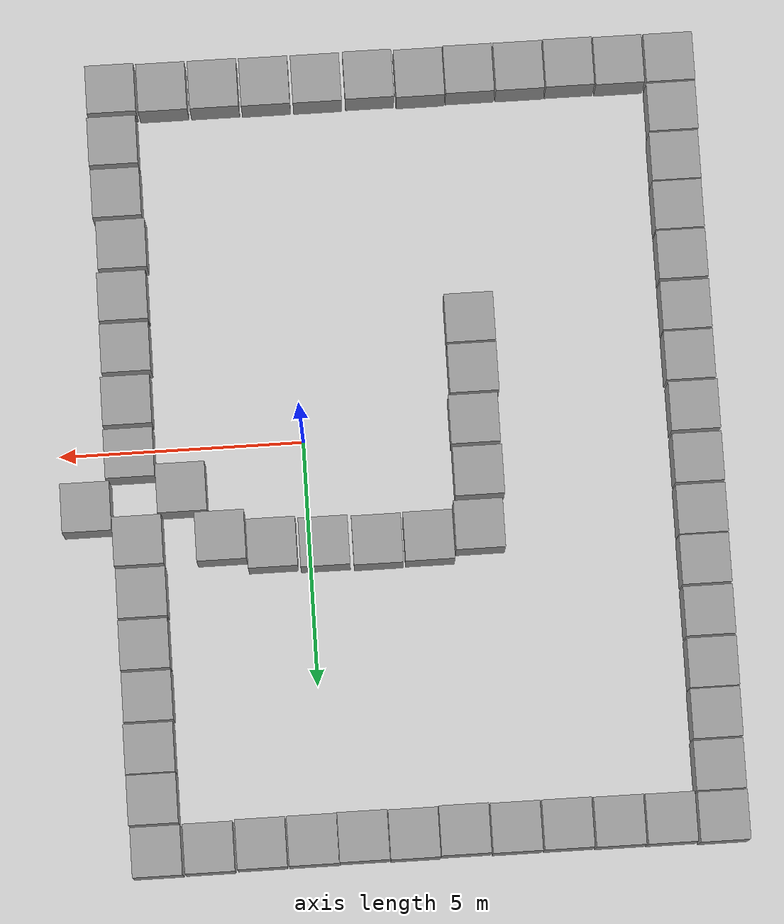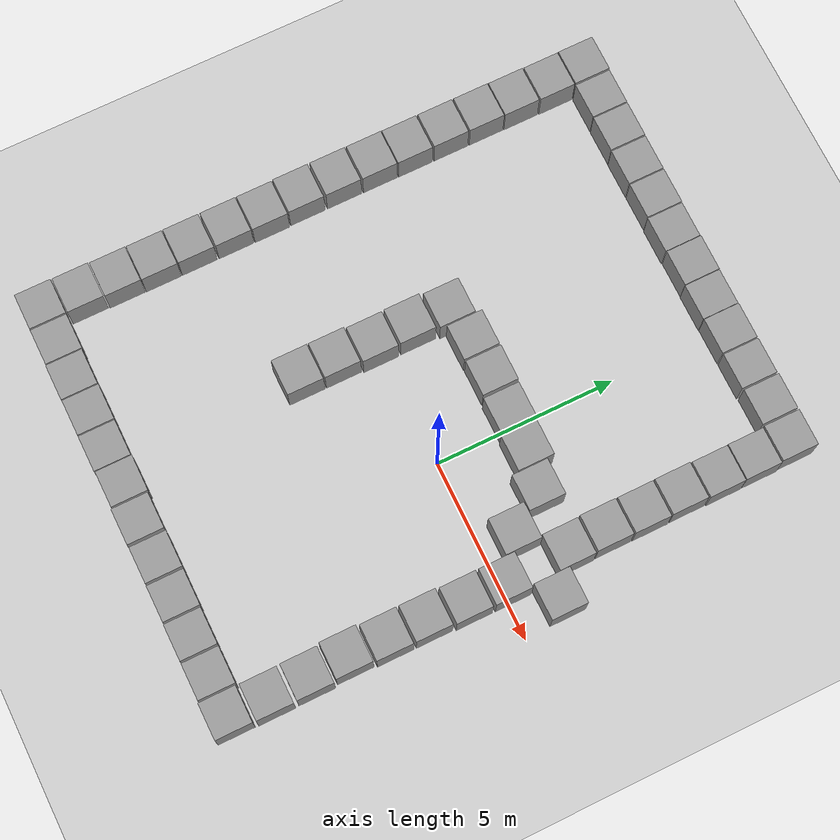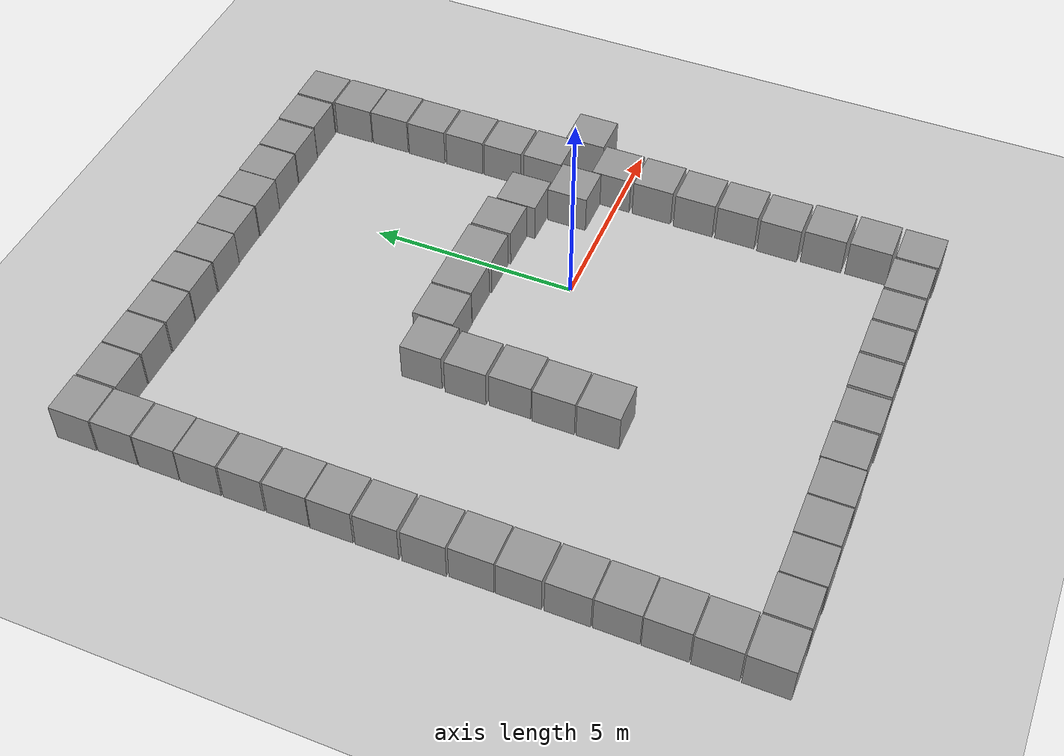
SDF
<sdf version="1.6">
 <world name="default">
  <light name="sun" type="directional">
   <pose>0 0 10 0 -0 0</pose>
   <diffuse>0.8 0.8 0.8 1</diffuse>
   <specular>0.1 0.1 0.1 1</specular>
   <attenuation>
    <range>1000</range>
    <constant>0.9</constant>
    <linear>0.01</linear>
    <quadratic>0.001</quadratic>
   </attenuation>
   <direction>-0.5 0.5 -1</direction>
  </light>
  <model name="ground_plane">
   <static>1</static>
   <link name="link">
    <collision name="collision">
     <geometry><plane><normal>0 0 1</normal><size>100 100</size></plane></geometry>
     <surface><friction><ode><mu>100</mu><mu2>50</mu2></ode></friction></surface>
    </collision>
    <visual name="visual">
     <cast_shadows>0</cast_shadows>
     <geometry><plane><normal>0 0 1</normal><size>100 100</size></plane></geometry>
     <material>
      <script><uri>file://media/materials/scripts/gazebo.material</uri><name>Gazebo/Grey</name></script>
     </material>
    </visual>
   </link>
  </model>
  <gravity>0 0 -9.8</gravity>
  <magnetic_field>6e-06 2.3e-05 -4.2e-05</magnetic_field>
  <atmosphere type="adiabatic"/>
  <physics name="default_physics" default="0" type="ode">
   <max_step_size>0.001</max_step_size>
   <real_time_factor>1</real_time_factor>
   <real_time_update_rate>1000</real_time_update_rate>
  </physics>
  <scene><ambient>0.4 0.4 0.4 1</ambient><background>0.7 0.7 0.7 1</background><shadows>1</shadows></scene>
  <spherical_coordinates>
   <surface_model>EARTH_WGS84</surface_model>
   <latitude_deg>0</latitude_deg>
   <longitude_deg>0</longitude_deg>
   <elevation>0</elevation>
   <heading_deg>0</heading_deg>
  </spherical_coordinates>
  <model name="unit_box_0">
   <pose>3.53321 0.132498 0.499995 0 1e-05 0</pose>
   <link name="link">
    <inertial>
     <mass>1</mass>
     <inertia>
      <ixx>0.166667</ixx>
      <ixy>0</ixy>
      <ixz>0</ixz>
      <iyy>0.166667</iyy>
      <iyz>0</iyz>
      <izz>0.166667</izz>
     </inertia>
    </inertial>
    <collision name="collision"><geometry><box><size>1 1 1</size></box></geometry></collision>
    <visual name="visual">
     <geometry><box><size>1 1 1</size></box></geometry>
     <material>
      <script><name>Gazebo/Grey</name><uri>file://media/materials/scripts/gazebo.material</uri></script>
     </material>
    </visual>
   </link>
  </model>
  <model name="unit_box_1">
   <pose>3.52933 -0.950333 0.499995 -1e-05 0 0</pose>
   <link name="link">
    <inertial>
     <mass>1</mass>
     <inertia>
      <ixx>0.166667</ixx>
      <ixy>0</ixy>
      <ixz>0</ixz>
      <iyy>0.166667</iyy>
      <iyz>0</iyz>
      <izz>0.166667</izz>
     </inertia>
    </inertial>
    <collision name="collision"><geometry><box><size>1 1 1</size></box></geometry></collision>
    <visual name="visual">
     <geometry><box><size>1 1 1</size></box></geometry>
     <material>
      <script><name>Gazebo/Grey</name><uri>file://media/materials/scripts/gazebo.material</uri></script>
     </material>
    </visual>
   </link>
  </model>
  <model name="unit_box_2">
   <pose>3.49553 -2.03354 0.499995 0 1e-05 0</pose>
   <link name="link">
    <inertial>
     <mass>1</mass>
     <inertia>
      <ixx>0.166667</ixx>
      <ixy>0</ixy>
      <ixz>0</ixz>
      <iyy>0.166667</iyy>
      <iyz>0</iyz>
      <izz>0.166667</izz>
     </inertia>
    </inertial>
    <collision name="collision"><geometry><box><size>1 1 1</size></box></geometry></collision>
    <visual name="visual">
     <geometry><box><size>1 1 1</size></box></geometry>
     <material>
      <script><name>Gazebo/Grey</name><uri>file://media/materials/scripts/gazebo.material</uri></script>
     </material>
    </visual>
   </link>
  </model>
  <model name="unit_box_3">
   <pose>3.49325 -3.10216 0.499995 -1e-05 0 0</pose>
   <link name="link">
    <inertial>
     <mass>1</mass>
     <inertia>
      <ixx>0.166667</ixx>
      <ixy>0</ixy>
      <ixz>0</ixz>
      <iyy>0.166667</iyy>
      <iyz>0</iyz>
      <izz>0.166667</izz>
     </inertia>
    </inertial>
    <collision name="collision"><geometry><box><size>1 1 1</size></box></geometry></collision>
    <visual name="visual">
     <geometry><box><size>1 1 1</size></box></geometry>
     <material>
      <script><name>Gazebo/Grey</name><uri>file://media/materials/scripts/gazebo.material</uri></script>
     </material>
    </visual>
   </link>
  </model>
  <model name="unit_box_4">
   <pose>3.45611 -4.17748 0.499995 0 1e-05 0</pose>
   <link name="link">
    <inertial>
     <mass>1</mass>
     <inertia>
      <ixx>0.166667</ixx>
      <ixy>0</ixy>
      <ixz>0</ixz>
      <iyy>0.166667</iyy>
      <iyz>0</iyz>
      <izz>0.166667</izz>
     </inertia>
    </inertial>
    <collision name="collision"><geometry><box><size>1 1 1</size></box></geometry></collision>
    <visual name="visual">
     <geometry><box><size>1 1 1</size></box></geometry>
     <material>
      <script><name>Gazebo/Grey</name><uri>file://media/materials/scripts/gazebo.material</uri></script>
     </material>
    </visual>
   </link>
  </model>
  <model name="unit_box_5">
   <pose>3.51108 -5.25224 0.499995 -1e-05 0 0</pose>
   <link name="link">
    <inertial>
     <mass>1</mass>
     <inertia>
      <ixx>0.166667</ixx>
      <ixy>0</ixy>
      <ixz>0</ixz>
      <iyy>0.166667</iyy>
      <iyz>0</iyz>
      <izz>0.166667</izz>
     </inertia>
    </inertial>
    <collision name="collision"><geometry><box><size>1 1 1</size></box></geometry></collision>
    <visual name="visual">
     <geometry><box><size>1 1 1</size></box></geometry>
     <material>
      <script><name>Gazebo/Grey</name><uri>file://media/materials/scripts/gazebo.material</uri></script>
     </material>
    </visual>
   </link>
  </model>
  <model name="unit_box_6">
   <pose>3.52556 -6.34191 0.499995 0 1e-05 0</pose>
   <link name="link">
    <inertial>
     <mass>1</mass>
     <inertia>
      <ixx>0.166667</ixx>
      <ixy>0</ixy>
      <ixz>0</ixz>
      <iyy>0.166667</iyy>
      <iyz>0</iyz>
      <izz>0.166667</izz>
     </inertia>
    </inertial>
    <collision name="collision"><geometry><box><size>1 1 1</size></box></geometry></collision>
    <visual name="visual">
     <geometry><box><size>1 1 1</size></box></geometry>
     <material>
      <script><name>Gazebo/Grey</name><uri>file://media/materials/scripts/gazebo.material</uri></script>
     </material>
    </visual>
   </link>
  </model>
  <model name="unit_box_7">
   <pose>3.51186 -7.42945 0.499995 -1e-05 0 0</pose>
   <link name="link">
    <inertial>
     <mass>1</mass>
     <inertia>
      <ixx>0.166667</ixx>
      <ixy>0</ixy>
      <ixz>0</ixz>
      <iyy>0.166667</iyy>
      <iyz>0</iyz>
      <izz>0.166667</izz>
     </inertia>
    </inertial>
    <collision name="collision"><geometry><box><size>1 1 1</size></box></geometry></collision>
    <visual name="visual">
     <geometry><box><size>1 1 1</size></box></geometry>
     <material>
      <script><name>Gazebo/Grey</name><uri>file://media/materials/scripts/gazebo.material</uri></script>
     </material>
    </visual>
   </link>
  </model>
  <model name="unit_box_8">
   <pose>2.46239 -7.40285 0.499995 0 1e-05 0</pose>
   <link name="link">
    <inertial>
     <mass>1</mass>
     <inertia>
      <ixx>0.166667</ixx>
      <ixy>0</ixy>
      <ixz>0</ixz>
      <iyy>0.166667</iyy>
      <iyz>0</iyz>
      <izz>0.166667</izz>
     </inertia>
    </inertial>
    <collision name="collision"><geometry><box><size>1 1 1</size></box></geometry></collision>
    <visual name="visual">
     <geometry><box><size>1 1 1</size></box></geometry>
     <material>
      <script><name>Gazebo/Grey</name><uri>file://media/materials/scripts/gazebo.material</uri></script>
     </material>
    </visual>
   </link>
  </model>
  <model name="unit_box_9">
   <pose>1.40532 -7.40187 0.499995 -1e-05 0 0</pose>
   <link name="link">
    <inertial>
     <mass>1</mass>
     <inertia>
      <ixx>0.166667</ixx>
      <ixy>0</ixy>
      <ixz>0</ixz>
      <iyy>0.166667</iyy>
      <iyz>0</iyz>
      <izz>0.166667</izz>
     </inertia>
    </inertial>
    <collision name="collision"><geometry><box><size>1 1 1</size></box></geometry></collision>
    <visual name="visual">
     <geometry><box><size>1 1 1</size></box></geometry>
     <material>
      <script><name>Gazebo/Grey</name><uri>file://media/materials/scripts/gazebo.material</uri></script>
     </material>
    </visual>
   </link>
  </model>
  <model name="unit_box_10">
   <pose>0.3512 -7.39122 0.499995 0 1e-05 0</pose>
   <link name="link">
    <inertial>
     <mass>1</mass>
     <inertia>
      <ixx>0.166667</ixx>
      <ixy>0</ixy>
      <ixz>0</ixz>
      <iyy>0.166667</iyy>
      <iyz>0</iyz>
      <izz>0.166667</izz>
     </inertia>
    </inertial>
    <collision name="collision"><geometry><box><size>1 1 1</size></box></geometry></collision>
    <visual name="visual">
     <geometry><box><size>1 1 1</size></box></geometry>
     <material>
      <script><name>Gazebo/Grey</name><uri>file://media/materials/scripts/gazebo.material</uri></script>
     </material>
    </visual>
   </link>
  </model>
  <model name="unit_box_11">
   <pose>-0.711689 -7.38835 0.499995 -1e-05 0 0</pose>
   <link name="link">
    <inertial>
     <mass>1</mass>
     <inertia>
      <ixx>0.166667</ixx>
      <ixy>0</ixy>
      <ixz>0</ixz>
      <iyy>0.166667</iyy>
      <iyz>0</iyz>
      <izz>0.166667</izz>
     </inertia>
    </inertial>
    <collision name="collision"><geometry><box><size>1 1 1</size></box></geometry></collision>
    <visual name="visual">
     <geometry><box><size>1 1 1</size></box></geometry>
     <material>
      <script><name>Gazebo/Grey</name><uri>file://media/materials/scripts/gazebo.material</uri></script>
     </material>
    </visual>
   </link>
  </model>
  <model name="unit_box_12">
   <pose>-1.78816 -7.4009 0.499995 0 1e-05 0</pose>
   <link name="link">
    <inertial>
     <mass>1</mass>
     <inertia>
      <ixx>0.166667</ixx>
      <ixy>0</ixy>
      <ixz>0</ixz>
      <iyy>0.166667</iyy>
      <iyz>0</iyz>
      <izz>0.166667</izz>
     </inertia>
    </inertial>
    <collision name="collision"><geometry><box><size>1 1 1</size></box></geometry></collision>
    <visual name="visual">
     <geometry><box><size>1 1 1</size></box></geometry>
     <material>
      <script><name>Gazebo/Grey</name><uri>file://media/materials/scripts/gazebo.material</uri></script>
     </material>
    </visual>
   </link>
  </model>
  <model name="unit_box_13">
   <pose>-2.83385 -7.37394 0.499995 -1e-05 0 0</pose>
   <link name="link">
    <inertial>
     <mass>1</mass>
     <inertia>
      <ixx>0.166667</ixx>
      <ixy>0</ixy>
      <ixz>0</ixz>
      <iyy>0.166667</iyy>
      <iyz>0</iyz>
      <izz>0.166667</izz>
     </inertia>
    </inertial>
    <collision name="collision"><geometry><box><size>1 1 1</size></box></geometry></collision>
    <visual name="visual">
     <geometry><box><size>1 1 1</size></box></geometry>
     <material>
      <script><name>Gazebo/Grey</name><uri>file://media/materials/scripts/gazebo.material</uri></script>
     </material>
    </visual>
   </link>
  </model>
  <model name="unit_box_14">
   <pose>-3.85385 -7.3933 0.499995 0 1e-05 0</pose>
   <link name="link">
    <inertial>
     <mass>1</mass>
     <inertia>
      <ixx>0.166667</ixx>
      <ixy>0</ixy>
      <ixz>0</ixz>
      <iyy>0.166667</iyy>
      <iyz>0</iyz>
      <izz>0.166667</izz>
     </inertia>
    </inertial>
    <collision name="collision"><geometry><box><size>1 1 1</size></box></geometry></collision>
    <visual name="visual">
     <geometry><box><size>1 1 1</size></box></geometry>
     <material>
      <script><name>Gazebo/Grey</name><uri>file://media/materials/scripts/gazebo.material</uri></script>
     </material>
    </visual>
   </link>
  </model>
  <model name="unit_box_15">
   <pose>-4.88602 -7.39111 0.499995 -1e-05 0 0</pose>
   <link name="link">
    <inertial>
     <mass>1</mass>
     <inertia>
      <ixx>0.166667</ixx>
      <ixy>0</ixy>
      <ixz>0</ixz>
      <iyy>0.166667</iyy>
      <iyz>0</iyz>
      <izz>0.166667</izz>
     </inertia>
    </inertial>
    <collision name="collision"><geometry><box><size>1 1 1</size></box></geometry></collision>
    <visual name="visual">
     <geometry><box><size>1 1 1</size></box></geometry>
     <material>
      <script><name>Gazebo/Grey</name><uri>file://media/materials/scripts/gazebo.material</uri></script>
     </material>
    </visual>
   </link>
  </model>
  <model name="unit_box_16">
   <pose>-5.91315 -7.40034 0.499995 0 1e-05 0</pose>
   <link name="link">
    <inertial>
     <mass>1</mass>
     <inertia>
      <ixx>0.166667</ixx>
      <ixy>0</ixy>
      <ixz>0</ixz>
      <iyy>0.166667</iyy>
      <iyz>0</iyz>
      <izz>0.166667</izz>
     </inertia>
    </inertial>
    <collision name="collision"><geometry><box><size>1 1 1</size></box></geometry></collision>
    <visual name="visual">
     <geometry><box><size>1 1 1</size></box></geometry>
     <material>
      <script><name>Gazebo/Grey</name><uri>file://media/materials/scripts/gazebo.material</uri></script>
     </material>
    </visual>
   </link>
  </model>
  <model name="unit_box_17">
   <pose>-6.94066 -7.3849 0.499995 -1e-05 0 0</pose>
   <link name="link">
    <inertial>
     <mass>1</mass>
     <inertia>
      <ixx>0.166667</ixx>
      <ixy>0</ixy>
      <ixz>0</ixz>
      <iyy>0.166667</iyy>
      <iyz>0</iyz>
      <izz>0.166667</izz>
     </inertia>
    </inertial>
    <collision name="collision"><geometry><box><size>1 1 1</size></box></geometry></collision>
    <visual name="visual">
     <geometry><box><size>1 1 1</size></box></geometry>
     <material>
      <script><name>Gazebo/Grey</name><uri>file://media/materials/scripts/gazebo.material</uri></script>
     </material>
    </visual>
   </link>
  </model>
  <model name="unit_box_18">
   <pose>-7.9798 -7.38371 0.499995 0 1e-05 0</pose>
   <link name="link">
    <inertial>
     <mass>1</mass>
     <inertia>
      <ixx>0.166667</ixx>
      <ixy>0</ixy>
      <ixz>0</ixz>
      <iyy>0.166667</iyy>
      <iyz>0</iyz>
      <izz>0.166667</izz>
     </inertia>
    </inertial>
    <collision name="collision"><geometry><box><size>1 1 1</size></box></geometry></collision>
    <visual name="visual">
     <geometry><box><size>1 1 1</size></box></geometry>
     <material>
      <script><name>Gazebo/Grey</name><uri>file://media/materials/scripts/gazebo.material</uri></script>
     </material>
    </visual>
   </link>
  </model>
  <model name="unit_box_19">
   <pose>-7.96835 -6.34791 0.499995 -1e-05 0 0</pose>
   <link name="link">
    <inertial>
     <mass>1</mass>
     <inertia>
      <ixx>0.166667</ixx>
      <ixy>0</ixy>
      <ixz>0</ixz>
      <iyy>0.166667</iyy>
      <iyz>0</iyz>
      <izz>0.166667</izz>
     </inertia>
    </inertial>
    <collision name="collision"><geometry><box><size>1 1 1</size></box></geometry></collision>
    <visual name="visual">
     <geometry><box><size>1 1 1</size></box></geometry>
     <material>
      <script><name>Gazebo/Grey</name><uri>file://media/materials/scripts/gazebo.material</uri></script>
     </material>
    </visual>
   </link>
  </model>
  <model name="unit_box_20">
   <pose>-7.94883 -5.31525 0.499995 0 1e-05 0</pose>
   <link name="link">
    <inertial>
     <mass>1</mass>
     <inertia>
      <ixx>0.166667</ixx>
      <ixy>0</ixy>
      <ixz>0</ixz>
      <iyy>0.166667</iyy>
      <iyz>0</iyz>
      <izz>0.166667</izz>
     </inertia>
    </inertial>
    <collision name="collision"><geometry><box><size>1 1 1</size></box></geometry></collision>
    <visual name="visual">
     <geometry><box><size>1 1 1</size></box></geometry>
     <material>
      <script><name>Gazebo/Grey</name><uri>file://media/materials/scripts/gazebo.material</uri></script>
     </material>
    </visual>
   </link>
  </model>
  <model name="unit_box_21">
   <pose>-7.94175 -4.29108 0.499995 -1e-05 0 0</pose>
   <link name="link">
    <inertial>
     <mass>1</mass>
     <inertia>
      <ixx>0.166667</ixx>
      <ixy>0</ixy>
      <ixz>0</ixz>
      <iyy>0.166667</iyy>
      <iyz>0</iyz>
      <izz>0.166667</izz>
     </inertia>
    </inertial>
    <collision name="collision"><geometry><box><size>1 1 1</size></box></geometry></collision>
    <visual name="visual">
     <geometry><box><size>1 1 1</size></box></geometry>
     <material>
      <script><name>Gazebo/Grey</name><uri>file://media/materials/scripts/gazebo.material</uri></script>
     </material>
    </visual>
   </link>
  </model>
  <model name="unit_box_22">
   <pose>-7.945 -3.26174 0.499995 0 1e-05 0</pose>
   <link name="link">
    <inertial>
     <mass>1</mass>
     <inertia>
      <ixx>0.166667</ixx>
      <ixy>0</ixy>
      <ixz>0</ixz>
      <iyy>0.166667</iyy>
      <iyz>0</iyz>
      <izz>0.166667</izz>
     </inertia>
    </inertial>
    <collision name="collision"><geometry><box><size>1 1 1</size></box></geometry></collision>
    <visual name="visual">
     <geometry><box><size>1 1 1</size></box></geometry>
     <material>
      <script><name>Gazebo/Grey</name><uri>file://media/materials/scripts/gazebo.material</uri></script>
     </material>
    </visual>
   </link>
  </model>
  <model name="unit_box_23">
   <pose>-7.94462 -2.20686 0.499995 -1e-05 0 0</pose>
   <link name="link">
    <inertial>
     <mass>1</mass>
     <inertia>
      <ixx>0.166667</ixx>
      <ixy>0</ixy>
      <ixz>0</ixz>
      <iyy>0.166667</iyy>
      <iyz>0</iyz>
      <izz>0.166667</izz>
     </inertia>
    </inertial>
    <collision name="collision"><geometry><box><size>1 1 1</size></box></geometry></collision>
    <visual name="visual">
     <geometry><box><size>1 1 1</size></box></geometry>
     <material>
      <script><name>Gazebo/Grey</name><uri>file://media/materials/scripts/gazebo.material</uri></script>
     </material>
    </visual>
   </link>
  </model>
  <model name="unit_box_24">
   <pose>-7.94133 -1.17308 0.499995 0 1e-05 0</pose>
   <link name="link">
    <inertial>
     <mass>1</mass>
     <inertia>
      <ixx>0.166667</ixx>
      <ixy>0</ixy>
      <ixz>0</ixz>
      <iyy>0.166667</iyy>
      <iyz>0</iyz>
      <izz>0.166667</izz>
     </inertia>
    </inertial>
    <collision name="collision"><geometry><box><size>1 1 1</size></box></geometry></collision>
    <visual name="visual">
     <geometry><box><size>1 1 1</size></box></geometry>
     <material>
      <script><name>Gazebo/Grey</name><uri>file://media/materials/scripts/gazebo.material</uri></script>
     </material>
    </visual>
   </link>
  </model>
  <model name="unit_box_25">
   <pose>-7.96197 -0.132017 0.499995 -1e-05 0 0</pose>
   <link name="link">
    <inertial>
     <mass>1</mass>
     <inertia>
      <ixx>0.166667</ixx>
      <ixy>0</ixy>
      <ixz>0</ixz>
      <iyy>0.166667</iyy>
      <iyz>0</iyz>
      <izz>0.166667</izz>
     </inertia>
    </inertial>
    <collision name="collision"><geometry><box><size>1 1 1</size></box></geometry></collision>
    <visual name="visual">
     <geometry><box><size>1 1 1</size></box></geometry>
     <material>
      <script><name>Gazebo/Grey</name><uri>file://media/materials/scripts/gazebo.material</uri></script>
     </material>
    </visual>
   </link>
  </model>
  <model name="unit_box_26">
   <pose>-7.9635 0.93502 0.499995 0 1e-05 0</pose>
   <link name="link">
    <inertial>
     <mass>1</mass>
     <inertia>
      <ixx>0.166667</ixx>
      <ixy>0</ixy>
      <ixz>0</ixz>
      <iyy>0.166667</iyy>
      <iyz>0</iyz>
      <izz>0.166667</izz>
     </inertia>
    </inertial>
    <collision name="collision"><geometry><box><size>1 1 1</size></box></geometry></collision>
    <visual name="visual">
     <geometry><box><size>1 1 1</size></box></geometry>
     <material>
      <script><name>Gazebo/Grey</name><uri>file://media/materials/scripts/gazebo.material</uri></script>
     </material>
    </visual>
   </link>
  </model>
  <model name="unit_box_27">
   <pose>-7.95908 1.98405 0.499995 -1e-05 0 0</pose>
   <link name="link">
    <inertial>
     <mass>1</mass>
     <inertia>
      <ixx>0.166667</ixx>
      <ixy>0</ixy>
      <ixz>0</ixz>
      <iyy>0.166667</iyy>
      <iyz>0</iyz>
      <izz>0.166667</izz>
     </inertia>
    </inertial>
    <collision name="collision"><geometry><box><size>1 1 1</size></box></geometry></collision>
    <visual name="visual">
     <geometry><box><size>1 1 1</size></box></geometry>
     <material>
      <script><name>Gazebo/Grey</name><uri>file://media/materials/scripts/gazebo.material</uri></script>
     </material>
    </visual>
   </link>
  </model>
  <model name="unit_box_28">
   <pose>-7.95308 3.00855 0.499995 0 1e-05 0</pose>
   <link name="link">
    <inertial>
     <mass>1</mass>
     <inertia>
      <ixx>0.166667</ixx>
      <ixy>0</ixy>
      <ixz>0</ixz>
      <iyy>0.166667</iyy>
      <iyz>0</iyz>
      <izz>0.166667</izz>
     </inertia>
    </inertial>
    <collision name="collision"><geometry><box><size>1 1 1</size></box></geometry></collision>
    <visual name="visual">
     <geometry><box><size>1 1 1</size></box></geometry>
     <material>
      <script><name>Gazebo/Grey</name><uri>file://media/materials/scripts/gazebo.material</uri></script>
     </material>
    </visual>
   </link>
  </model>
  <model name="unit_box_29">
   <pose>-7.9525 4.05328 0.499995 -1e-05 0 0</pose>
   <link name="link">
    <inertial>
     <mass>1</mass>
     <inertia>
      <ixx>0.166667</ixx>
      <ixy>0</ixy>
      <ixz>0</ixz>
      <iyy>0.166667</iyy>
      <iyz>0</iyz>
      <izz>0.166667</izz>
     </inertia>
    </inertial>
    <collision name="collision"><geometry><box><size>1 1 1</size></box></geometry></collision>
    <visual name="visual">
     <geometry><box><size>1 1 1</size></box></geometry>
     <material>
      <script><name>Gazebo/Grey</name><uri>file://media/materials/scripts/gazebo.material</uri></script>
     </material>
    </visual>
   </link>
  </model>
  <model name="unit_box_30">
   <pose>-7.94965 5.09545 0.499995 0 1e-05 0</pose>
   <link name="link">
    <inertial>
     <mass>1</mass>
     <inertia>
      <ixx>0.166667</ixx>
      <ixy>0</ixy>
      <ixz>0</ixz>
      <iyy>0.166667</iyy>
      <iyz>0</iyz>
      <izz>0.166667</izz>
     </inertia>
    </inertial>
    <collision name="collision"><geometry><box><size>1 1 1</size></box></geometry></collision>
    <visual name="visual">
     <geometry><box><size>1 1 1</size></box></geometry>
     <material>
      <script><name>Gazebo/Grey</name><uri>file://media/materials/scripts/gazebo.material</uri></script>
     </material>
    </visual>
   </link>
  </model>
  <model name="unit_box_31">
   <pose>-7.94028 6.11895 0.499995 -1e-05 0 0</pose>
   <link name="link">
    <inertial>
     <mass>1</mass>
     <inertia>
      <ixx>0.166667</ixx>
      <ixy>0</ixy>
      <ixz>0</ixz>
      <iyy>0.166667</iyy>
      <iyz>0</iyz>
      <izz>0.166667</izz>
     </inertia>
    </inertial>
    <collision name="collision"><geometry><box><size>1 1 1</size></box></geometry></collision>
    <visual name="visual">
     <geometry><box><size>1 1 1</size></box></geometry>
     <material>
      <script><name>Gazebo/Grey</name><uri>file://media/materials/scripts/gazebo.material</uri></script>
     </material>
    </visual>
   </link>
  </model>
  <model name="unit_box_32">
   <pose>-7.92947 7.1565 0.499995 0 1e-05 0</pose>
   <link name="link">
    <inertial>
     <mass>1</mass>
     <inertia>
      <ixx>0.166667</ixx>
      <ixy>0</ixy>
      <ixz>0</ixz>
      <iyy>0.166667</iyy>
      <iyz>0</iyz>
      <izz>0.166667</izz>
     </inertia>
    </inertial>
    <collision name="collision"><geometry><box><size>1 1 1</size></box></geometry></collision>
    <visual name="visual">
     <geometry><box><size>1 1 1</size></box></geometry>
     <material>
      <script><name>Gazebo/Grey</name><uri>file://media/materials/scripts/gazebo.material</uri></script>
     </material>
    </visual>
   </link>
  </model>
  <model name="unit_box_33">
   <pose>-7.93719 8.18495 0.499995 -1e-05 0 0</pose>
   <link name="link">
    <inertial>
     <mass>1</mass>
     <inertia>
      <ixx>0.166667</ixx>
      <ixy>0</ixy>
      <ixz>0</ixz>
      <iyy>0.166667</iyy>
      <iyz>0</iyz>
      <izz>0.166667</izz>
     </inertia>
    </inertial>
    <collision name="collision"><geometry><box><size>1 1 1</size></box></geometry></collision>
    <visual name="visual">
     <geometry><box><size>1 1 1</size></box></geometry>
     <material>
      <script><name>Gazebo/Grey</name><uri>file://media/materials/scripts/gazebo.material</uri></script>
     </material>
    </visual>
   </link>
  </model>
  <model name="unit_box_34">
   <pose>-6.8906 8.16055 0.499995 0 1e-05 0</pose>
   <link name="link">
    <inertial>
     <mass>1</mass>
     <inertia>
      <ixx>0.166667</ixx>
      <ixy>0</ixy>
      <ixz>0</ixz>
      <iyy>0.166667</iyy>
      <iyz>0</iyz>
      <izz>0.166667</izz>
     </inertia>
    </inertial>
    <collision name="collision"><geometry><box><size>1 1 1</size></box></geometry></collision>
    <visual name="visual">
     <geometry><box><size>1 1 1</size></box></geometry>
     <material>
      <script><name>Gazebo/Grey</name><uri>file://media/materials/scripts/gazebo.material</uri></script>
     </material>
    </visual>
   </link>
  </model>
  <model name="unit_box_35">
   <pose>-5.85855 8.15554 0.499995 -1e-05 0 0</pose>
   <link name="link">
    <inertial>
     <mass>1</mass>
     <inertia>
      <ixx>0.166667</ixx>
      <ixy>0</ixy>
      <ixz>0</ixz>
      <iyy>0.166667</iyy>
      <iyz>0</iyz>
      <izz>0.166667</izz>
     </inertia>
    </inertial>
    <collision name="collision"><geometry><box><size>1 1 1</size></box></geometry></collision>
    <visual name="visual">
     <geometry><box><size>1 1 1</size></box></geometry>
     <material>
      <script><name>Gazebo/Grey</name><uri>file://media/materials/scripts/gazebo.material</uri></script>
     </material>
    </visual>
   </link>
  </model>
  <model name="unit_box_36">
   <pose>-4.82266 8.14686 0.499995 0 1e-05 0</pose>
   <link name="link">
    <inertial>
     <mass>1</mass>
     <inertia>
      <ixx>0.166667</ixx>
      <ixy>0</ixy>
      <ixz>0</ixz>
      <iyy>0.166667</iyy>
      <iyz>0</iyz>
      <izz>0.166667</izz>
     </inertia>
    </inertial>
    <collision name="collision"><geometry><box><size>1 1 1</size></box></geometry></collision>
    <visual name="visual">
     <geometry><box><size>1 1 1</size></box></geometry>
     <material>
      <script><name>Gazebo/Grey</name><uri>file://media/materials/scripts/gazebo.material</uri></script>
     </material>
    </visual>
   </link>
  </model>
  <model name="unit_box_37">
   <pose>-3.79121 8.1481 0.499995 -1e-05 0 0</pose>
   <link name="link">
    <inertial>
     <mass>1</mass>
     <inertia>
      <ixx>0.166667</ixx>
      <ixy>0</ixy>
      <ixz>0</ixz>
      <iyy>0.166667</iyy>
      <iyz>0</iyz>
      <izz>0.166667</izz>
     </inertia>
    </inertial>
    <collision name="collision"><geometry><box><size>1 1 1</size></box></geometry></collision>
    <visual name="visual">
     <geometry><box><size>1 1 1</size></box></geometry>
     <material>
      <script><name>Gazebo/Grey</name><uri>file://media/materials/scripts/gazebo.material</uri></script>
     </material>
    </visual>
   </link>
  </model>
  <model name="unit_box_38">
   <pose>-2.76376 8.13341 0.499995 0 1e-05 0</pose>
   <link name="link">
    <inertial>
     <mass>1</mass>
     <inertia>
      <ixx>0.166667</ixx>
      <ixy>0</ixy>
      <ixz>0</ixz>
      <iyy>0.166667</iyy>
      <iyz>0</iyz>
      <izz>0.166667</izz>
     </inertia>
    </inertial>
    <collision name="collision"><geometry><box><size>1 1 1</size></box></geometry></collision>
    <visual name="visual">
     <geometry><box><size>1 1 1</size></box></geometry>
     <material>
      <script><name>Gazebo/Grey</name><uri>file://media/materials/scripts/gazebo.material</uri></script>
     </material>
    </visual>
   </link>
  </model>
  <model name="unit_box_39">
   <pose>-1.74734 8.15152 0.499995 -1e-05 0 0</pose>
   <link name="link">
    <inertial>
     <mass>1</mass>
     <inertia>
      <ixx>0.166667</ixx>
      <ixy>0</ixy>
      <ixz>0</ixz>
      <iyy>0.166667</iyy>
      <iyz>0</iyz>
      <izz>0.166667</izz>
     </inertia>
    </inertial>
    <collision name="collision"><geometry><box><size>1 1 1</size></box></geometry></collision>
    <visual name="visual">
     <geometry><box><size>1 1 1</size></box></geometry>
     <material>
      <script><name>Gazebo/Grey</name><uri>file://media/materials/scripts/gazebo.material</uri></script>
     </material>
    </visual>
   </link>
  </model>
  <model name="unit_box_40">
   <pose>-0.728334 8.14054 0.499995 0 1e-05 0</pose>
   <link name="link">
    <inertial>
     <mass>1</mass>
     <inertia>
      <ixx>0.166667</ixx>
      <ixy>0</ixy>
      <ixz>0</ixz>
      <iyy>0.166667</iyy>
      <iyz>0</iyz>
      <izz>0.166667</izz>
     </inertia>
    </inertial>
    <collision name="collision"><geometry><box><size>1 1 1</size></box></geometry></collision>
    <visual name="visual">
     <geometry><box><size>1 1 1</size></box></geometry>
     <material>
      <script><name>Gazebo/Grey</name><uri>file://media/materials/scripts/gazebo.material</uri></script>
     </material>
    </visual>
   </link>
  </model>
  <model name="unit_box_41">
   <pose>0.283195 8.15151 0.499995 -1e-05 0 0</pose>
   <link name="link">
    <inertial>
     <mass>1</mass>
     <inertia>
      <ixx>0.166667</ixx>
      <ixy>0</ixy>
      <ixz>0</ixz>
      <iyy>0.166667</iyy>
      <iyz>0</iyz>
      <izz>0.166667</izz>
     </inertia>
    </inertial>
    <collision name="collision"><geometry><box><size>1 1 1</size></box></geometry></collision>
    <visual name="visual">
     <geometry><box><size>1 1 1</size></box></geometry>
     <material>
      <script><name>Gazebo/Grey</name><uri>file://media/materials/scripts/gazebo.material</uri></script>
     </material>
    </visual>
   </link>
  </model>
  <model name="unit_box_42">
   <pose>1.31764 8.15509 0.499995 0 1e-05 0</pose>
   <link name="link">
    <inertial>
     <mass>1</mass>
     <inertia>
      <ixx>0.166667</ixx>
      <ixy>0</ixy>
      <ixz>0</ixz>
      <iyy>0.166667</iyy>
      <iyz>0</iyz>
      <izz>0.166667</izz>
     </inertia>
    </inertial>
    <collision name="collision"><geometry><box><size>1 1 1</size></box></geometry></collision>
    <visual name="visual">
     <geometry><box><size>1 1 1</size></box></geometry>
     <material>
      <script><name>Gazebo/Grey</name><uri>file://media/materials/scripts/gazebo.material</uri></script>
     </material>
    </visual>
   </link>
  </model>
  <model name="unit_box_43">
   <pose>2.36508 8.17774 0.499995 -1e-05 0 0</pose>
   <link name="link">
    <inertial>
     <mass>1</mass>
     <inertia>
      <ixx>0.166667</ixx>
      <ixy>0</ixy>
      <ixz>0</ixz>
      <iyy>0.166667</iyy>
      <iyz>0</iyz>
      <izz>0.166667</izz>
     </inertia>
    </inertial>
    <collision name="collision"><geometry><box><size>1 1 1</size></box></geometry></collision>
    <visual name="visual">
     <geometry><box><size>1 1 1</size></box></geometry>
     <material>
      <script><name>Gazebo/Grey</name><uri>file://media/materials/scripts/gazebo.material</uri></script>
     </material>
    </visual>
   </link>
  </model>
  <model name="unit_box_44">
   <pose>3.41465 8.18725 0.499995 0 1e-05 0</pose>
   <link name="link">
    <inertial>
     <mass>1</mass>
     <inertia>
      <ixx>0.166667</ixx>
      <ixy>0</ixy>
      <ixz>0</ixz>
      <iyy>0.166667</iyy>
      <iyz>0</iyz>
      <izz>0.166667</izz>
     </inertia>
    </inertial>
    <collision name="collision"><geometry><box><size>1 1 1</size></box></geometry></collision>
    <visual name="visual">
     <geometry><box><size>1 1 1</size></box></geometry>
     <material>
      <script><name>Gazebo/Grey</name><uri>file://media/materials/scripts/gazebo.material</uri></script>
     </material>
    </visual>
   </link>
  </model>
  <model name="unit_box_45">
   <pose>3.43839 7.14517 0.499995 -1e-05 0 0</pose>
   <link name="link">
    <inertial>
     <mass>1</mass>
     <inertia>
      <ixx>0.166667</ixx>
      <ixy>0</ixy>
      <ixz>0</ixz>
      <iyy>0.166667</iyy>
      <iyz>0</iyz>
      <izz>0.166667</izz>
     </inertia>
    </inertial>
    <collision name="collision"><geometry><box><size>1 1 1</size></box></geometry></collision>
    <visual name="visual">
     <geometry><box><size>1 1 1</size></box></geometry>
     <material>
      <script><name>Gazebo/Grey</name><uri>file://media/materials/scripts/gazebo.material</uri></script>
     </material>
    </visual>
   </link>
  </model>
  <model name="unit_box_46">
   <pose>3.44375 6.12199 0.499995 0 1e-05 0</pose>
   <link name="link">
    <inertial>
     <mass>1</mass>
     <inertia>
      <ixx>0.166667</ixx>
      <ixy>0</ixy>
      <ixz>0</ixz>
      <iyy>0.166667</iyy>
      <iyz>0</iyz>
      <izz>0.166667</izz>
     </inertia>
    </inertial>
    <collision name="collision"><geometry><box><size>1 1 1</size></box></geometry></collision>
    <visual name="visual">
     <geometry><box><size>1 1 1</size></box></geometry>
     <material>
      <script><name>Gazebo/Grey</name><uri>file://media/materials/scripts/gazebo.material</uri></script>
     </material>
    </visual>
   </link>
  </model>
  <model name="unit_box_47">
   <pose>3.42481 5.08164 0.499995 -1e-05 0 0</pose>
   <link name="link">
    <inertial>
     <mass>1</mass>
     <inertia>
      <ixx>0.166667</ixx>
      <ixy>0</ixy>
      <ixz>0</ixz>
      <iyy>0.166667</iyy>
      <iyz>0</iyz>
      <izz>0.166667</izz>
     </inertia>
    </inertial>
    <collision name="collision"><geometry><box><size>1 1 1</size></box></geometry></collision>
    <visual name="visual">
     <geometry><box><size>1 1 1</size></box></geometry>
     <material>
      <script><name>Gazebo/Grey</name><uri>file://media/materials/scripts/gazebo.material</uri></script>
     </material>
    </visual>
   </link>
  </model>
  <model name="unit_box_48">
   <pose>3.43411 4.03212 0.499995 0 1e-05 0</pose>
   <link name="link">
    <inertial>
     <mass>1</mass>
     <inertia>
      <ixx>0.166667</ixx>
      <ixy>0</ixy>
      <ixz>0</ixz>
      <iyy>0.166667</iyy>
      <iyz>0</iyz>
      <izz>0.166667</izz>
     </inertia>
    </inertial>
    <collision name="collision"><geometry><box><size>1 1 1</size></box></geometry></collision>
    <visual name="visual">
     <geometry><box><size>1 1 1</size></box></geometry>
     <material>
      <script><name>Gazebo/Grey</name><uri>file://media/materials/scripts/gazebo.material</uri></script>
     </material>
    </visual>
   </link>
  </model>
  <model name="unit_box_49">
   <pose>3.42747 2.98543 0.499995 -1e-05 0 0</pose>
   <link name="link">
    <inertial>
     <mass>1</mass>
     <inertia>
      <ixx>0.166667</ixx>
      <ixy>0</ixy>
      <ixz>0</ixz>
      <iyy>0.166667</iyy>
      <iyz>0</iyz>
      <izz>0.166667</izz>
     </inertia>
    </inertial>
    <collision name="collision"><geometry><box><size>1 1 1</size></box></geometry></collision>
    <visual name="visual">
     <geometry><box><size>1 1 1</size></box></geometry>
     <material>
      <script><name>Gazebo/Grey</name><uri>file://media/materials/scripts/gazebo.material</uri></script>
     </material>
    </visual>
   </link>
  </model>
  <model name="unit_box_50">
   <pose>3.44937 1.92616 0.499995 0 1e-05 0</pose>
   <link name="link">
    <inertial>
     <mass>1</mass>
     <inertia>
      <ixx>0.166667</ixx>
      <ixy>0</ixy>
      <ixz>0</ixz>
      <iyy>0.166667</iyy>
      <iyz>0</iyz>
      <izz>0.166667</izz>
     </inertia>
    </inertial>
    <collision name="collision"><geometry><box><size>1 1 1</size></box></geometry></collision>
    <visual name="visual">
     <geometry><box><size>1 1 1</size></box></geometry>
     <material>
      <script><name>Gazebo/Grey</name><uri>file://media/materials/scripts/gazebo.material</uri></script>
     </material>
    </visual>
   </link>
  </model>
  <model name="unit_box_51">
   <pose>4.46029 1.18666 0.499995 -1e-05 0 0</pose>
   <link name="link">
    <inertial>
     <mass>1</mass>
     <inertia>
      <ixx>0.166667</ixx>
      <ixy>0</ixy>
      <ixz>0</ixz>
      <iyy>0.166667</iyy>
      <iyz>0</iyz>
      <izz>0.166667</izz>
     </inertia>
    </inertial>
    <collision name="collision"><geometry><box><size>1 1 1</size></box></geometry></collision>
    <visual name="visual">
     <geometry><box><size>1 1 1</size></box></geometry>
     <material>
      <script><name>Gazebo/Grey</name><uri>file://media/materials/scripts/gazebo.material</uri></script>
     </material>
    </visual>
   </link>
  </model>
  <model name="unit_box_52">
   <pose>2.51756 0.898449 0.499995 0 1e-05 0</pose>
   <link name="link">
    <inertial>
     <mass>1</mass>
     <inertia>
      <ixx>0.166667</ixx>
      <ixy>0</ixy>
      <ixz>0</ixz>
      <iyy>0.166667</iyy>
      <iyz>0</iyz>
      <izz>0.166667</izz>
     </inertia>
    </inertial>
    <collision name="collision"><geometry><box><size>1 1 1</size></box></geometry></collision>
    <visual name="visual">
     <geometry><box><size>1 1 1</size></box></geometry>
     <material>
      <script><name>Gazebo/Grey</name><uri>file://media/materials/scripts/gazebo.material</uri></script>
     </material>
    </visual>
   </link>
  </model>
  <model name="unit_box_53">
   <pose>1.78156 1.92796 0.499995 -1e-05 0 0</pose>
   <link name="link">
    <inertial>
     <mass>1</mass>
     <inertia>
      <ixx>0.166667</ixx>
      <ixy>0</ixy>
      <ixz>0</ixz>
      <iyy>0.166667</iyy>
      <iyz>0</iyz>
      <izz>0.166667</izz>
     </inertia>
    </inertial>
    <collision name="collision"><geometry><box><size>1 1 1</size></box></geometry></collision>
    <visual name="visual">
     <geometry><box><size>1 1 1</size></box></geometry>
     <material>
      <script><name>Gazebo/Grey</name><uri>file://media/materials/scripts/gazebo.material</uri></script>
     </material>
    </visual>
   </link>
  </model>
  <model name="unit_box_54">
   <pose>0.75417 2.13499 0.499995 0 1e-05 0</pose>
   <link name="link">
    <inertial>
     <mass>1</mass>
     <inertia>
      <ixx>0.166667</ixx>
      <ixy>0</ixy>
      <ixz>0</ixz>
      <iyy>0.166667</iyy>
      <iyz>0</iyz>
      <izz>0.166667</izz>
     </inertia>
    </inertial>
    <collision name="collision"><geometry><box><size>1 1 1</size></box></geometry></collision>
    <visual name="visual">
     <geometry><box><size>1 1 1</size></box></geometry>
     <material>
      <script><name>Gazebo/Grey</name><uri>file://media/materials/scripts/gazebo.material</uri></script>
     </material>
    </visual>
   </link>
  </model>
  <model name="unit_box_55">
   <pose>-0.302397 2.17516 0.499995 -1e-05 0 0</pose>
   <link name="link">
    <inertial>
     <mass>1</mass>
     <inertia>
      <ixx>0.166667</ixx>
      <ixy>0</ixy>
      <ixz>0</ixz>
      <iyy>0.166667</iyy>
      <iyz>0</iyz>
      <izz>0.166667</izz>
     </inertia>
    </inertial>
    <collision name="collision"><geometry><box><size>1 1 1</size></box></geometry></collision>
    <visual name="visual">
     <geometry><box><size>1 1 1</size></box></geometry>
     <material>
      <script><name>Gazebo/Grey</name><uri>file://media/materials/scripts/gazebo.material</uri></script>
     </material>
    </visual>
   </link>
  </model>
  <model name="unit_box_56">
   <pose>-1.3779 2.20227 0.499995 0 1e-05 0</pose>
   <link name="link">
    <inertial>
     <mass>1</mass>
     <inertia>
      <ixx>0.166667</ixx>
      <ixy>0</ixy>
      <ixz>0</ixz>
      <iyy>0.166667</iyy>
      <iyz>0</iyz>
      <izz>0.166667</izz>
     </inertia>
    </inertial>
    <collision name="collision"><geometry><box><size>1 1 1</size></box></geometry></collision>
    <visual name="visual">
     <geometry><box><size>1 1 1</size></box></geometry>
     <material>
      <script><name>Gazebo/Grey</name><uri>file://media/materials/scripts/gazebo.material</uri></script>
     </material>
    </visual>
   </link>
  </model>
  <model name="unit_box_57">
   <pose>-2.42103 2.19059 0.499995 -1e-05 0 0</pose>
   <link name="link">
    <inertial>
     <mass>1</mass>
     <inertia>
      <ixx>0.166667</ixx>
      <ixy>0</ixy>
      <ixz>0</ixz>
      <iyy>0.166667</iyy>
      <iyz>0</iyz>
      <izz>0.166667</izz>
     </inertia>
    </inertial>
    <collision name="collision"><geometry><box><size>1 1 1</size></box></geometry></collision>
    <visual name="visual">
     <geometry><box><size>1 1 1</size></box></geometry>
     <material>
      <script><name>Gazebo/Grey</name><uri>file://media/materials/scripts/gazebo.material</uri></script>
     </material>
    </visual>
   </link>
  </model>
  <model name="unit_box_58">
   <pose>-3.45471 2.02069 0.499995 0 1e-05 0</pose>
   <link name="link">
    <inertial>
     <mass>1</mass>
     <inertia>
      <ixx>0.166667</ixx>
      <ixy>0</ixy>
      <ixz>0</ixz>
      <iyy>0.166667</iyy>
      <iyz>0</iyz>
      <izz>0.166667</izz>
     </inertia>
    </inertial>
    <collision name="collision"><geometry><box><size>1 1 1</size></box></geometry></collision>
    <visual name="visual">
     <geometry><box><size>1 1 1</size></box></geometry>
     <material>
      <script><name>Gazebo/Grey</name><uri>file://media/materials/scripts/gazebo.material</uri></script>
     </material>
    </visual>
   </link>
  </model>
  <model name="unit_box_59">
   <pose>-3.50815 0.927909 0.499995 -1e-05 0 0</pose>
   <link name="link">
    <inertial>
     <mass>1</mass>
     <inertia>
      <ixx>0.166667</ixx>
      <ixy>0</ixy>
      <ixz>0</ixz>
      <iyy>0.166667</iyy>
      <iyz>0</iyz>
      <izz>0.166667</izz>
     </inertia>
    </inertial>
    <collision name="collision"><geometry><box><size>1 1 1</size></box></geometry></collision>
    <visual name="visual">
     <geometry><box><size>1 1 1</size></box></geometry>
     <material>
      <script><name>Gazebo/Grey</name><uri>file://media/materials/scripts/gazebo.material</uri></script>
     </material>
    </visual>
   </link>
  </model>
  <model name="unit_box_60">
   <pose>-3.49315 -0.137745 0.499995 0 1e-05 0</pose>
   <link name="link">
    <inertial>
     <mass>1</mass>
     <inertia>
      <ixx>0.166667</ixx>
      <ixy>0</ixy>
      <ixz>0</ixz>
      <iyy>0.166667</iyy>
      <iyz>0</iyz>
      <izz>0.166667</izz>
     </inertia>
    </inertial>
    <collision name="collision"><geometry><box><size>1 1 1</size></box></geometry></collision>
    <visual name="visual">
     <geometry><box><size>1 1 1</size></box></geometry>
     <material>
      <script><name>Gazebo/Grey</name><uri>file://media/materials/scripts/gazebo.material</uri></script>
     </material>
    </visual>
   </link>
  </model>
  <model name="unit_box_61">
   <pose>-3.53564 -1.18258 0.499995 -1e-05 0 0</pose>
   <link name="link">
    <inertial>
     <mass>1</mass>
     <inertia>
      <ixx>0.166667</ixx>
      <ixy>0</ixy>
      <ixz>0</ixz>
      <iyy>0.166667</iyy>
      <iyz>0</iyz>
      <izz>0.166667</izz>
     </inertia>
    </inertial>
    <collision name="collision"><geometry><box><size>1 1 1</size></box></geometry></collision>
    <visual name="visual">
     <geometry><box><size>1 1 1</size></box></geometry>
     <material>
      <script><name>Gazebo/Grey</name><uri>file://media/materials/scripts/gazebo.material</uri></script>
     </material>
    </visual>
   </link>
  </model>
  <model name="unit_box_62">
   <pose>-3.5371 -2.22121 0.5 0 -0 0</pose>
   <link name="link">
    <inertial>
     <mass>1</mass>
     <inertia>
      <ixx>0.166667</ixx>
      <ixy>0</ixy>
      <ixz>0</ixz>
      <iyy>0.166667</iyy>
      <iyz>0</iyz>
      <izz>0.166667</izz>
     </inertia>
    </inertial>
    <collision name="collision"><geometry><box><size>1 1 1</size></box></geometry></collision>
    <visual name="visual">
     <geometry><box><size>1 1 1</size></box></geometry>
     <material>
      <script><name>Gazebo/Grey</name><uri>file://media/materials/scripts/gazebo.material</uri></script>
     </material>
    </visual>
   </link>
  </model>
 </world>
</sdf>
